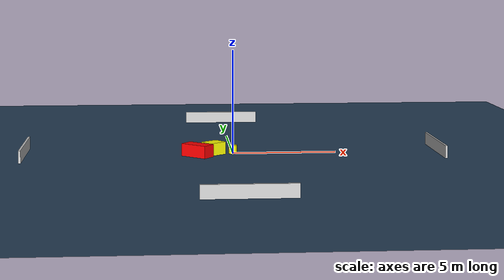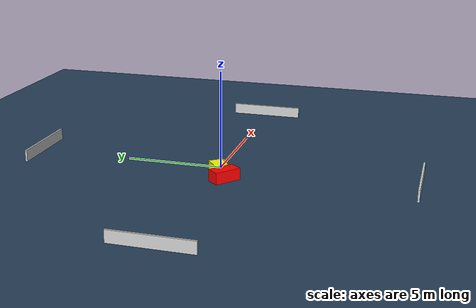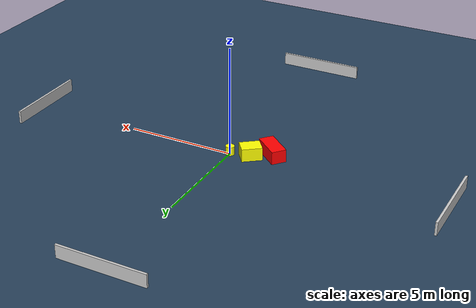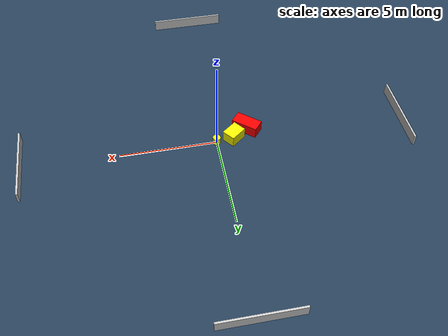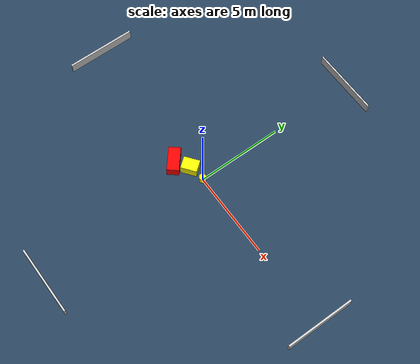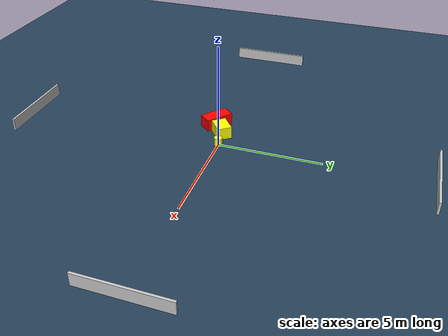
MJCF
<?xml version="1.0" ?>
<mujoco model="generated_environment">
  <option timestep="0.01" integrator="RK4" cone="elliptic"/>
  <default>
    <geom density="1"/>
  </default>
  <asset>
    <texture builtin="gradient" height="3072" name="skybox" rgb1="0.3 0.5 0.7" rgb2="0 0 0" type="skybox" width="512"/>
    <texture builtin="checker" height="300" name="groundplane" rgb1="0.2 0.3 0.4" rgb2="0.1 0.2 0.3" type="2d" width="300"/>
    <material name="groundplane" reflectance="0.2" texrepeat="5 5" texture="groundplane"/>
  </asset>
  <worldbody>
    <light dir="0 0 -1" directional="true" pos="0 0 1.5"/>
    <geom condim="3" friction="0.5 0.005 0.001" material="groundplane" name="floor" pos="0 0 0" size="0 0 0.05" type="plane"/>
    <body name="walls">
      <geom name="wall_1" condim="4" pos="-10.0 0.0 0.3" rgba="0.800000011920929 0.800000011920929 0.800000011920929 1.0" size="0.05 2.0 0.3" type="box"/>
      <geom name="wall_2" condim="4" pos="10.0 0.0 0.3" rgba="0.800000011920929 0.800000011920929 0.800000011920929 1.0" size="0.05 2.0 0.3" type="box"/>
      <geom name="wall_3" condim="4" pos="0.0 -10.0 0.3" rgba="0.800000011920929 0.800000011920929 0.800000011920929 1.0" size="2.0 0.05 0.3" type="box"/>
      <geom name="wall_4" condim="4" pos="0.0 10.0 0.3" rgba="0.800000011920929 0.800000011920929 0.800000011920929 1.0" size="2.0 0.05 0.3" type="box"/>
    </body>
    <body name="robot">
      <joint name="joint_x" type="slide" pos="0 0 0" axis="1 0 0"/>
      <joint name="joint_y" type="slide" pos="0 0 0" axis="0 1 0"/>
      <geom name="robot" type="cylinder" pos="0.0 0.0 0.2" size="0.2 0.2 0.0" mass="5.0" friction="1.0 0.005 0.0001" condim="4" rgba="1.0 1.0 0.0 1.0"/>
    </body>
    <body name="obstacle_1_movable">
      <geom name="obstacle_1_movable" condim="4" pos="-0.9386483572712634 -0.14399080619841098 0.3" euler="0 0 127.63334832118855" friction="0.0 0.005 0.001" rgba="1.0 1.0 0.0 1.0" size="0.3561328076502457 0.46161545690114764 0.3" type="box" mass="0.1"/>
      <joint type="free"/>
    </body>
    <body name="obstacle_2_static">
      <geom name="obstacle_2_static" condim="4" pos="-1.7359759842520608 -0.6802914305883763 0.3" euler="0 0 139.97738527703942" friction="0.0 0.005 0.001" rgba="1.0 0.0 0.0 1.0" size="0.6955631386409058 0.33987289606615134 0.3" type="box"/>
    </body>
  </worldbody>
  <actuator>
    <motor name="actuator_x" joint="joint_x" gear="1" ctrlrange="-1 1"/>
    <motor name="actuator_y" joint="joint_y" gear="1" ctrlrange="-1 1"/>
  </actuator>
</mujoco>
